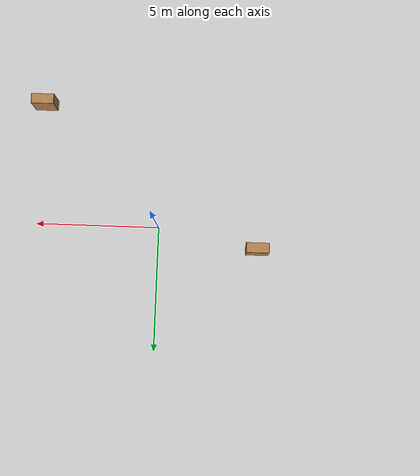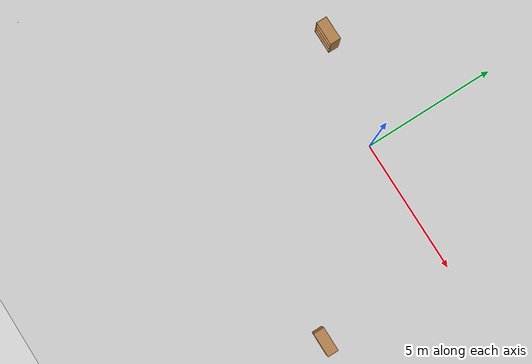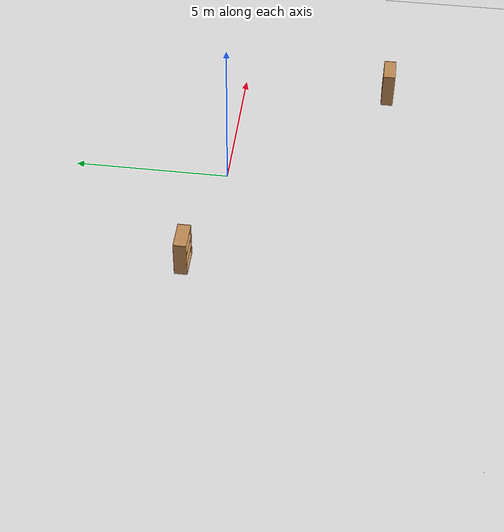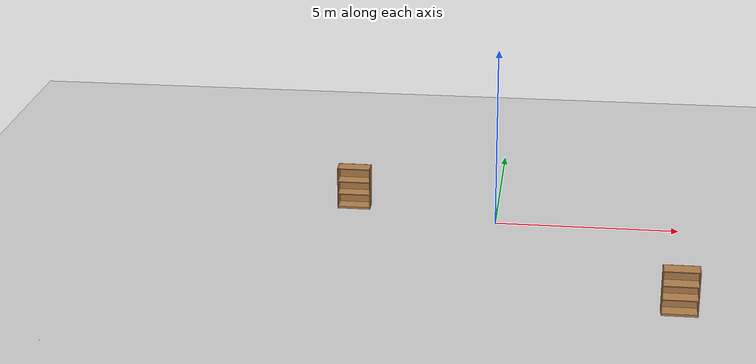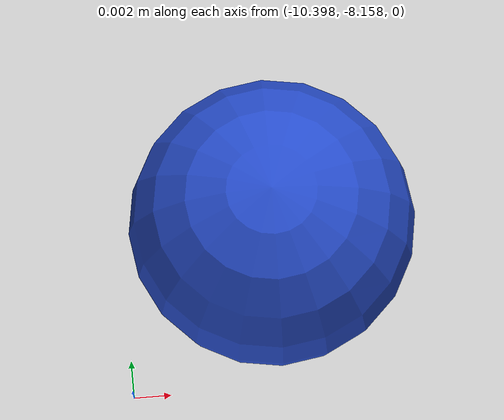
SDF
<sdf version="1.7">
 <world name="default">
  <light name="sun" type="directional">
   <pose>0 0 10 0 -0 0</pose>
   <diffuse>0.8 0.8 0.8 1</diffuse>
   <specular>0.2 0.2 0.2 1</specular>
   <attenuation>
    <range>1000</range>
    <constant>0.9</constant>
    <linear>0.01</linear>
    <quadratic>0.001</quadratic>
   </attenuation>
   <direction>-0.5 0.1 -0.9</direction>
   <spot><inner_angle>0</inner_angle><outer_angle>0</outer_angle><falloff>0</falloff></spot>
  </light>
  <model name="ground_plane">
   <static>1</static>
   <link name="link">
    <collision name="collision">
     <geometry><plane><normal>0 0 1</normal><size>100 100</size></plane></geometry>
     <surface><friction><ode><mu>100</mu><mu2>50</mu2></ode></friction></surface>
    </collision>
    <visual name="visual">
     <cast_shadows>0</cast_shadows>
     <geometry><plane><normal>0 0 1</normal><size>100 100</size></plane></geometry>
     <material>
      <script><uri>file://media/materials/scripts/gazebo.material</uri><name>Gazebo/Grey</name></script>
     </material>
    </visual>
   </link>
  </model>
  <gravity>0 0 -9.8</gravity>
  <magnetic_field>6e-06 2.3e-05 -4.2e-05</magnetic_field>
  <atmosphere type="adiabatic"/>
  <physics type="ode">
   <max_step_size>0.001</max_step_size>
   <real_time_factor>1</real_time_factor>
   <real_time_update_rate>1000</real_time_update_rate>
  </physics>
  <scene><ambient>0.4 0.4 0.4 1</ambient><background>0.7 0.7 0.7 1</background><shadows>1</shadows></scene>
  <audio><device>default</device></audio>
  <spherical_coordinates>
   <surface_model>EARTH_WGS84</surface_model>
   <latitude_deg>0</latitude_deg>
   <longitude_deg>0</longitude_deg>
   <elevation>0</elevation>
   <heading_deg>0</heading_deg>
  </spherical_coordinates>
  <model name="bookshelf">
   <static>1</static>
   <link name="link">
    <inertial><mass>1</mass></inertial>
    <collision name="back">
     <pose>0 0.005 0.6 0 -0 0</pose>
     <geometry><box><size>0.9 0.01 1.2</size></box></geometry>
    </collision>
    <visual name="visual1">
     <pose>0 0.005 0.6 0 -0 0</pose>
     <geometry><box><size>0.9 0.01 1.2</size></box></geometry>
     <material>
      <script><uri>file://media/materials/scripts/gazebo.material</uri><name>Gazebo/Wood</name></script>
     </material>
    </visual>
    <collision name="left_side">
     <pose>0.45 -0.195 0.6 0 -0 0</pose>
     <geometry><box><size>0.02 0.4 1.2</size></box></geometry>
    </collision>
    <visual name="visual2">
     <pose>0.45 -0.195 0.6 0 -0 0</pose>
     <geometry><box><size>0.02 0.4 1.2</size></box></geometry>
     <material>
      <script><uri>file://media/materials/scripts/gazebo.material</uri><name>Gazebo/Wood</name></script>
     </material>
    </visual>
    <collision name="right_side">
     <pose>-0.45 -0.195 0.6 0 -0 0</pose>
     <geometry><box><size>0.02 0.4 1.2</size></box></geometry>
    </collision>
    <visual name="visual3">
     <pose>-0.45 -0.195 0.6 0 -0 0</pose>
     <geometry><box><size>0.02 0.4 1.2</size></box></geometry>
     <material>
      <script><uri>file://media/materials/scripts/gazebo.material</uri><name>Gazebo/Wood</name></script>
     </material>
    </visual>
    <collision name="bottom">
     <pose>0 -0.195 0.03 0 -0 0</pose>
     <geometry><box><size>0.88 0.4 0.06</size></box></geometry>
    </collision>
    <visual name="visual4">
     <pose>0 -0.195 0.03 0 -0 0</pose>
     <geometry><box><size>0.88 0.4 0.06</size></box></geometry>
     <material>
      <script><uri>file://media/materials/scripts/gazebo.material</uri><name>Gazebo/Wood</name></script>
     </material>
    </visual>
    <collision name="top">
     <pose>0 -0.195 1.19 0 -0 0</pose>
     <geometry><box><size>0.88 0.4 0.02</size></box></geometry>
    </collision>
    <visual name="visual5">
     <pose>0 -0.195 1.19 0 -0 0</pose>
     <geometry><box><size>0.88 0.4 0.02</size></box></geometry>
     <material>
      <script><uri>file://media/materials/scripts/gazebo.material</uri><name>Gazebo/Wood</name></script>
     </material>
    </visual>
    <collision name="low_shelf">
     <pose>0 -0.195 0.43 0 -0 0</pose>
     <geometry><box><size>0.88 0.4 0.02</size></box></geometry>
    </collision>
    <visual name="visual6">
     <pose>0 -0.195 0.43 0 -0 0</pose>
     <geometry><box><size>0.88 0.4 0.02</size></box></geometry>
     <material>
      <script><uri>file://media/materials/scripts/gazebo.material</uri><name>Gazebo/Wood</name></script>
     </material>
    </visual>
    <collision name="high_shelf">
     <pose>0 -0.195 0.8 0 -0 0</pose>
     <geometry><box><size>0.88 0.4 0.02</size></box></geometry>
    </collision>
    <visual name="visual7">
     <pose>0 -0.195 0.8 0 -0 0</pose>
     <geometry><box><size>0.88 0.4 0.02</size></box></geometry>
     <material>
      <script><uri>file://media/materials/scripts/gazebo.material</uri><name>Gazebo/Wood</name></script>
     </material>
    </visual>
   </link>
   <pose>-4.02968 0.988919 0 0 -0 0</pose>
  </model>
  <model name="marble_1_5cm">
   <link name="link">
    <pose>0 0 0.0075 0 -0 0</pose>
    <inertial>
     <mass>0.0062</mass>
     <inertia>
      <ixx>1.395e-07</ixx>
      <ixy>0</ixy>
      <ixz>0</ixz>
      <iyy>1.395e-07</iyy>
      <iyz>0</iyz>
      <izz>1.395e-07</izz>
     </inertia>
    </inertial>
    <collision name="collision">
     <geometry><sphere><radius>0.0075</radius></sphere></geometry>
     <surface>
      <contact>
       <poissons_ratio>0.22</poissons_ratio>
       <elastic_modulus>5.1e+10</elastic_modulus>
       <ode><kp>100000</kp><kd>100</kd><max_vel>100</max_vel><min_depth>0.001</min_depth></ode>
      </contact>
      <friction>
       <torsional>
        <coefficient>1</coefficient>
        <use_patch_radius>0</use_patch_radius>
        <surface_radius>0.01</surface_radius>
       </torsional>
      </friction>
     </surface>
    </collision>
    <visual name="visual">
     <geometry><sphere><radius>0.0075</radius></sphere></geometry>
     <material>
      <script><uri>file://media/materials/scripts/gazebo.material</uri><name>Gazebo/Blue</name></script>
     </material>
    </visual>
    <velocity_decay><linear>0</linear><angular>0.005</angular></velocity_decay>
   </link>
   <pose>-10.39 -8.15055 -0.001001 0 -0 0</pose>
  </model>
  <model name="bookshelf_0">
   <static>1</static>
   <link name="link">
    <inertial><mass>1</mass></inertial>
    <collision name="back">
     <pose>0 0.005 0.6 0 -0 0</pose>
     <geometry><box><size>0.9 0.01 1.2</size></box></geometry>
    </collision>
    <visual name="visual1">
     <pose>0 0.005 0.6 0 -0 0</pose>
     <geometry><box><size>0.9 0.01 1.2</size></box></geometry>
     <material>
      <script><uri>file://media/materials/scripts/gazebo.material</uri><name>Gazebo/Wood</name></script>
     </material>
    </visual>
    <collision name="left_side">
     <pose>0.45 -0.195 0.6 0 -0 0</pose>
     <geometry><box><size>0.02 0.4 1.2</size></box></geometry>
    </collision>
    <visual name="visual2">
     <pose>0.45 -0.195 0.6 0 -0 0</pose>
     <geometry><box><size>0.02 0.4 1.2</size></box></geometry>
     <material>
      <script><uri>file://media/materials/scripts/gazebo.material</uri><name>Gazebo/Wood</name></script>
     </material>
    </visual>
    <collision name="right_side">
     <pose>-0.45 -0.195 0.6 0 -0 0</pose>
     <geometry><box><size>0.02 0.4 1.2</size></box></geometry>
    </collision>
    <visual name="visual3">
     <pose>-0.45 -0.195 0.6 0 -0 0</pose>
     <geometry><box><size>0.02 0.4 1.2</size></box></geometry>
     <material>
      <script><uri>file://media/materials/scripts/gazebo.material</uri><name>Gazebo/Wood</name></script>
     </material>
    </visual>
    <collision name="bottom">
     <pose>0 -0.195 0.03 0 -0 0</pose>
     <geometry><box><size>0.88 0.4 0.06</size></box></geometry>
    </collision>
    <visual name="visual4">
     <pose>0 -0.195 0.03 0 -0 0</pose>
     <geometry><box><size>0.88 0.4 0.06</size></box></geometry>
     <material>
      <script><uri>file://media/materials/scripts/gazebo.material</uri><name>Gazebo/Wood</name></script>
     </material>
    </visual>
    <collision name="top">
     <pose>0 -0.195 1.19 0 -0 0</pose>
     <geometry><box><size>0.88 0.4 0.02</size></box></geometry>
    </collision>
    <visual name="visual5">
     <pose>0 -0.195 1.19 0 -0 0</pose>
     <geometry><box><size>0.88 0.4 0.02</size></box></geometry>
     <material>
      <script><uri>file://media/materials/scripts/gazebo.material</uri><name>Gazebo/Wood</name></script>
     </material>
    </visual>
    <collision name="low_shelf">
     <pose>0 -0.195 0.43 0 -0 0</pose>
     <geometry><box><size>0.88 0.4 0.02</size></box></geometry>
    </collision>
    <visual name="visual6">
     <pose>0 -0.195 0.43 0 -0 0</pose>
     <geometry><box><size>0.88 0.4 0.02</size></box></geometry>
     <material>
      <script><uri>file://media/materials/scripts/gazebo.material</uri><name>Gazebo/Wood</name></script>
     </material>
    </visual>
    <collision name="high_shelf">
     <pose>0 -0.195 0.8 0 -0 0</pose>
     <geometry><box><size>0.88 0.4 0.02</size></box></geometry>
    </collision>
    <visual name="visual7">
     <pose>0 -0.195 0.8 0 -0 0</pose>
     <geometry><box><size>0.88 0.4 0.02</size></box></geometry>
     <material>
      <script><uri>file://media/materials/scripts/gazebo.material</uri><name>Gazebo/Wood</name></script>
     </material>
    </visual>
   </link>
   <pose>4.83213 -4.78125 0 0 -0 0</pose>
  </model>
 </world>
</sdf>
